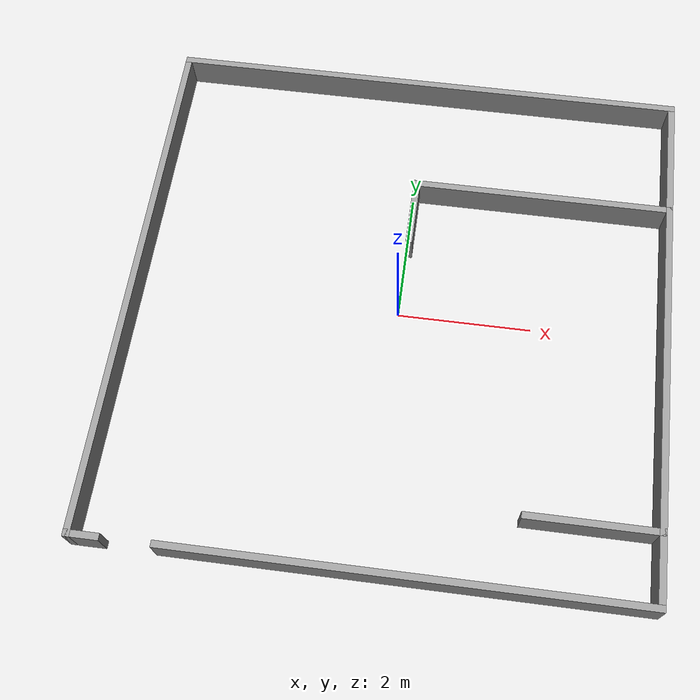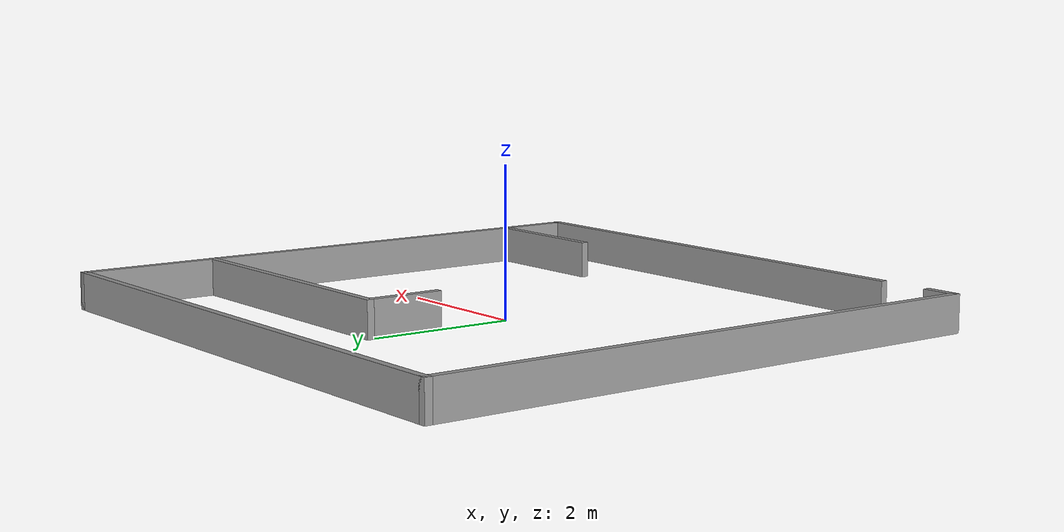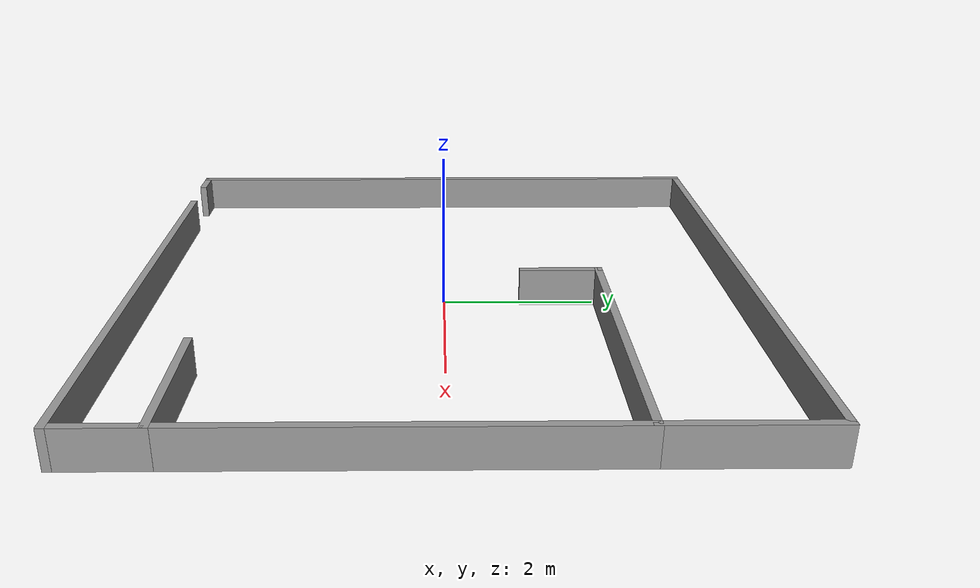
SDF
<?xml version='1.0'?>
<sdf version='1.6'>
  <model name='shape6'>
    <pose frame=''>-0.014 0.009 0 0 -0 0</pose>
    <link name='Wall_0'>
      <collision name='Wall_0_Collision'>
        <geometry>
          <box>
            <size>8 0.1 0.5</size>
          </box>
        </geometry>
        <pose frame=''>0 0 0.25 0 -0 0</pose>
      </collision>
      <visual name='Wall_0_Visual'>
        <pose frame=''>0 0 0.25 0 -0 0</pose>
        <geometry>
          <box>
            <size>8 0.1 0.5</size>
          </box>
        </geometry>
        <material>
          <script>
            <uri>file://media/materials/scripts/gazebo.material</uri>
            <name>Gazebo/Grey</name>
          </script>
          <ambient>1 1 1 1</ambient>
        </material>
        <meta>
          <layer>0</layer>
        </meta>
      </visual>
      <pose frame=''>-3.95 0 0 0 -0 -1.5708</pose>
    </link>
    <link name='Wall_1'>
      <collision name='Wall_1_Collision'>
        <geometry>
          <box>
            <size>0.5 0.1 0.5</size>
          </box>
        </geometry>
        <pose frame=''>0 0 0.25 0 -0 0</pose>
      </collision>
      <visual name='Wall_1_Visual'>
        <pose frame=''>0 0 0.25 0 -0 0</pose>
        <geometry>
          <box>
            <size>0.5 0.1 0.5</size>
          </box>
        </geometry>
        <material>
          <script>
            <uri>file://media/materials/scripts/gazebo.material</uri>
            <name>Gazebo/Grey</name>
          </script>
          <ambient>1 1 1 1</ambient>
        </material>
        <meta>
          <layer>0</layer>
        </meta>
      </visual>
      <pose frame=''>-3.75 -3.95 0 0 -0 0</pose>
    </link>
    <link name='Wall_10'>
      <collision name='Wall_10_Collision'>
        <geometry>
          <box>
            <size>1.95 0.1 0.5</size>
          </box>
        </geometry>
        <pose frame=''>0 0 0.25 0 -0 0</pose>
      </collision>
      <visual name='Wall_10_Visual'>
        <pose frame=''>0 0 0.25 0 -0 0</pose>
        <geometry>
          <box>
            <size>1.95 0.1 0.5</size>
          </box>
        </geometry>
        <material>
          <script>
            <uri>file://media/materials/scripts/gazebo.material</uri>
            <name>Gazebo/Grey</name>
          </script>
          <ambient>1 1 1 1</ambient>
        </material>
        <meta>
          <layer>0</layer>
        </meta>
      </visual>
      <pose frame=''>3.025 -2.95 0 0 -0 3.14159</pose>
    </link>
    <link name='Wall_12'>
      <collision name='Wall_12_Collision'>
        <geometry>
          <box>
            <size>1.1 0.1 0.5</size>
          </box>
        </geometry>
        <pose frame=''>0 0 0.25 0 -0 0</pose>
      </collision>
      <visual name='Wall_12_Visual'>
        <pose frame=''>0 0 0.25 0 -0 0</pose>
        <geometry>
          <box>
            <size>1.1 0.1 0.5</size>
          </box>
        </geometry>
        <material>
          <script>
            <uri>file://media/materials/scripts/gazebo.material</uri>
            <name>Gazebo/Grey</name>
          </script>
          <ambient>1 1 1 1</ambient>
        </material>
        <meta>
          <layer>0</layer>
        </meta>
      </visual>
      <pose frame=''>3.95 -3.45 0 0 -0 -1.5708</pose>
    </link>
    <link name='Wall_13'>
      <collision name='Wall_13_Collision'>
        <geometry>
          <box>
            <size>6.8 0.1 0.5</size>
          </box>
        </geometry>
        <pose frame=''>0 0 0.25 0 -0 0</pose>
      </collision>
      <visual name='Wall_13_Visual'>
        <pose frame=''>0 0 0.25 0 -0 0</pose>
        <geometry>
          <box>
            <size>6.8 0.1 0.5</size>
          </box>
        </geometry>
        <material>
          <script>
            <uri>file://media/materials/scripts/gazebo.material</uri>
            <name>Gazebo/Grey</name>
          </script>
          <ambient>1 1 1 1</ambient>
        </material>
        <meta>
          <layer>0</layer>
        </meta>
      </visual>
      <pose frame=''>0.6 -3.95 0 0 -0 3.14159</pose>
    </link>
    <link name='Wall_3'>
      <collision name='Wall_3_Collision'>
        <geometry>
          <box>
            <size>8 0.1 0.5</size>
          </box>
        </geometry>
        <pose frame=''>0 0 0.25 0 -0 0</pose>
      </collision>
      <visual name='Wall_3_Visual'>
        <pose frame=''>0 0 0.25 0 -0 0</pose>
        <geometry>
          <box>
            <size>8 0.1 0.5</size>
          </box>
        </geometry>
        <material>
          <script>
            <uri>file://media/materials/scripts/gazebo.material</uri>
            <name>Gazebo/Grey</name>
          </script>
          <ambient>1 1 1 1</ambient>
        </material>
        <meta>
          <layer>0</layer>
        </meta>
      </visual>
      <pose frame=''>-0 3.95 0 0 -0 0</pose>
    </link>
    <link name='Wall_4'>
      <collision name='Wall_4_Collision'>
        <geometry>
          <box>
            <size>2 0.1 0.5</size>
          </box>
        </geometry>
        <pose frame=''>0 0 0.25 0 -0 0</pose>
      </collision>
      <visual name='Wall_4_Visual'>
        <pose frame=''>0 0 0.25 0 -0 0</pose>
        <geometry>
          <box>
            <size>2 0.1 0.5</size>
          </box>
        </geometry>
        <material>
          <script>
            <uri>file://media/materials/scripts/gazebo.material</uri>
            <name>Gazebo/Grey</name>
          </script>
          <ambient>1 1 1 1</ambient>
        </material>
        <meta>
          <layer>0</layer>
        </meta>
      </visual>
      <pose frame=''>3.95 3 0 0 -0 -1.5708</pose>
    </link>
    <link name='Wall_5'>
      <collision name='Wall_5_Collision'>
        <geometry>
          <box>
            <size>5.1 0.1 0.5</size>
          </box>
        </geometry>
        <pose frame=''>0 0 0.25 0 -0 0</pose>
      </collision>
      <visual name='Wall_5_Visual'>
        <pose frame=''>0 0 0.25 0 -0 0</pose>
        <geometry>
          <box>
            <size>5.1 0.1 0.5</size>
          </box>
        </geometry>
        <material>
          <script>
            <uri>file://media/materials/scripts/gazebo.material</uri>
            <name>Gazebo/Grey</name>
          </script>
          <ambient>1 1 1 1</ambient>
        </material>
        <meta>
          <layer>0</layer>
        </meta>
      </visual>
      <pose frame=''>3.95 -0.45 0 0 -0 -1.5708</pose>
    </link>
    <link name='Wall_7'>
      <collision name='Wall_7_Collision'>
        <geometry>
          <box>
            <size>4 0.1 0.5</size>
          </box>
        </geometry>
        <pose frame=''>0 0 0.25 0 -0 0</pose>
      </collision>
      <visual name='Wall_7_Visual'>
        <pose frame=''>0 0 0.25 0 -0 0</pose>
        <geometry>
          <box>
            <size>4 0.1 0.5</size>
          </box>
        </geometry>
        <material>
          <script>
            <uri>file://media/materials/scripts/gazebo.material</uri>
            <name>Gazebo/Grey</name>
          </script>
          <ambient>1 1 1 1</ambient>
        </material>
        <meta>
          <layer>0</layer>
        </meta>
      </visual>
      <pose frame=''>2 2.05 0 0 -0 3.14159</pose>
    </link>
    <link name='Wall_8'>
      <collision name='Wall_8_Collision'>
        <geometry>
          <box>
            <size>1.1 0.1 0.5</size>
          </box>
        </geometry>
        <pose frame=''>0 0 0.25 0 -0 0</pose>
      </collision>
      <visual name='Wall_8_Visual'>
        <pose frame=''>0 0 0.25 0 -0 0</pose>
        <geometry>
          <box>
            <size>1.1 0.1 0.5</size>
          </box>
        </geometry>
        <material>
          <script>
            <uri>file://media/materials/scripts/gazebo.material</uri>
            <name>Gazebo/Grey</name>
          </script>
          <ambient>1 1 1 1</ambient>
        </material>
        <meta>
          <layer>0</layer>
        </meta>
      </visual>
      <pose frame=''>0.05 1.55 0 0 -0 -1.5708</pose>
    </link>
    <static>1</static>
  </model>
</sdf>
